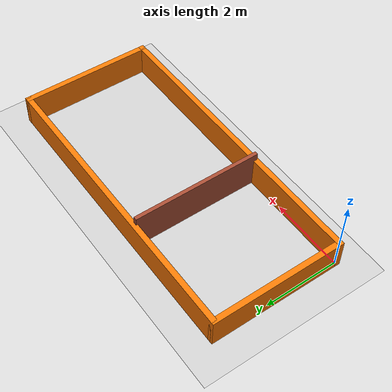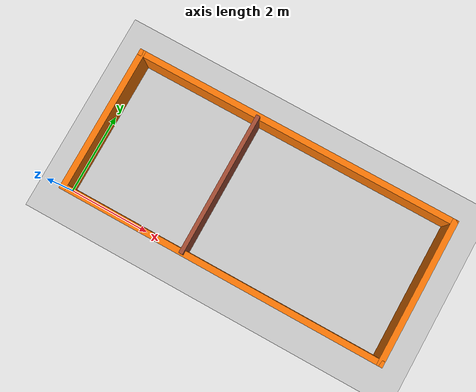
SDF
<sdf version="1.7">
 <world name="world_bt_1">
  <light name="sun" type="directional">
   <pose>0 0 10 0 -0 0</pose>
   <diffuse>0.8 0.8 0.8 1</diffuse>
   <specular>0.2 0.2 0.2 1</specular>
   <attenuation>
    <range>1000</range>
    <constant>0.9</constant>
    <linear>0.01</linear>
    <quadratic>0.001</quadratic>
   </attenuation>
   <direction>-0.5 0.1 -0.9</direction>
   <spot><inner_angle>0</inner_angle><outer_angle>0</outer_angle><falloff>0</falloff></spot>
  </light>
  <model name="ground_plane">
   <static>1</static>
   <link name="link">
    <collision name="collision">
     <geometry><plane><normal>0 0 1</normal><size>100 100</size></plane></geometry>
     <surface><friction><ode><mu>100</mu><mu2>50</mu2></ode></friction></surface>
    </collision>
    <visual name="visual">
     <cast_shadows>0</cast_shadows>
     <geometry><plane><normal>0 0 1</normal><size>100 100</size></plane></geometry>
     <material>
      <script><uri>file://media/materials/scripts/gazebo.material</uri><name>Gazebo/Grey</name></script>
     </material>
    </visual>
   </link>
  </model>
  <gravity>0 0 -9.8</gravity>
  <magnetic_field>6e-06 2.3e-05 -4.2e-05</magnetic_field>
  <atmosphere type="adiabatic"/>
  <physics type="ode">
   <max_step_size>0.001</max_step_size>
   <real_time_factor>1</real_time_factor>
   <real_time_update_rate>1000</real_time_update_rate>
  </physics>
  <scene><ambient>0.4 0.4 0.4 1</ambient><background>0.7 0.7 0.7 1</background><shadows>1</shadows></scene>
  <audio><device>default</device></audio>
  <spherical_coordinates>
   <surface_model>EARTH_WGS84</surface_model>
   <latitude_deg>0</latitude_deg>
   <longitude_deg>0</longitude_deg>
   <elevation>0</elevation>
   <heading_deg>0</heading_deg>
  </spherical_coordinates>
  <model name="walls">
   <pose>4 1.75 0 0 -0 0</pose>
   <link name="Wall_23">
    <collision name="Wall_23_Collision">
     <geometry><box><size>3.65 0.15 0.8</size></box></geometry>
     <pose>0 0 0.4 0 -0 0</pose>
    </collision>
    <visual name="Wall_23_Visual">
     <pose>0 0 0.4 0 -0 0</pose>
     <geometry><box><size>3.65 0.15 0.8</size></box></geometry>
     <material>
      <script><uri>file://media/materials/scripts/gazebo.material</uri><name>Gazebo/Grey</name></script>
      <ambient>0.996078 0.47451 0.0196078 1</ambient>
     </material>
     <meta><layer>0</layer></meta>
    </visual>
    <pose>-4 0 0 0 -0 1.5708</pose>
   </link>
   <link name="Wall_24">
    <collision name="Wall_24_Collision">
     <geometry><box><size>8.15 0.15 0.8</size></box></geometry>
     <pose>0 0 0.4 0 -0 0</pose>
    </collision>
    <visual name="Wall_24_Visual">
     <pose>0 0 0.4 0 -0 0</pose>
     <geometry><box><size>8.15 0.15 0.8</size></box></geometry>
     <material>
      <script><uri>file://media/materials/scripts/gazebo.material</uri><name>Gazebo/Grey</name></script>
      <ambient>0.996078 0.47451 0.0196078 1</ambient>
     </material>
     <meta><layer>0</layer></meta>
    </visual>
    <pose>0 1.75 0 0 -0 0</pose>
   </link>
   <link name="Wall_25">
    <collision name="Wall_25_Collision">
     <geometry><box><size>3.65 0.15 0.8</size></box></geometry>
     <pose>0 0 0.4 0 -0 0</pose>
    </collision>
    <visual name="Wall_25_Visual">
     <pose>0 0 0.4 0 -0 0</pose>
     <geometry><box><size>3.65 0.15 0.8</size></box></geometry>
     <material>
      <script><uri>file://media/materials/scripts/gazebo.material</uri><name>Gazebo/Grey</name></script>
      <ambient>0.996078 0.47451 0.0196078 1</ambient>
     </material>
     <meta><layer>0</layer></meta>
    </visual>
    <pose>4 0 0 0 -0 -1.5708</pose>
   </link>
   <link name="Wall_26">
    <collision name="Wall_26_Collision">
     <geometry><box><size>8.15 0.15 0.8</size></box></geometry>
     <pose>0 0 0.4 0 -0 0</pose>
    </collision>
    <visual name="Wall_26_Visual">
     <pose>0 0 0.4 0 -0 0</pose>
     <geometry><box><size>8.15 0.15 0.8</size></box></geometry>
     <material>
      <script><uri>file://media/materials/scripts/gazebo.material</uri><name>Gazebo/Grey</name></script>
      <ambient>0.996078 0.47451 0.0196078 1</ambient>
     </material>
     <meta><layer>0</layer></meta>
    </visual>
    <pose>0 -1.75 0 0 -0 3.14159</pose>
   </link>
   <static>1</static>
  </model>
  <model name="wall">
   <static>true</static>
   <link name="link_0">
    <inertial>
     <mass>100</mass>
     <inertia>
      <ixx>0.166667</ixx>
      <ixy>0</ixy>
      <ixz>0</ixz>
      <iyy>0.166667</iyy>
      <iyz>0</iyz>
      <izz>0.166667</izz>
     </inertia>
    </inertial>
    <pose>-0.568582 -0.224997 0.5 0 -0 0</pose>
    <visual name="visual">
     <geometry><box><size>0.1 3.5 1</size></box></geometry>
     <material>
      <lighting>1</lighting>
      <script><uri>file://media/materials/scripts/gazebo.material</uri><name>Gazebo/Bricks</name></script>
      <shader type="pixel"><normal_map>__default__</normal_map></shader>
      <ambient>1 1 1 1</ambient>
      <diffuse>0.7 0.7 0.7 1</diffuse>
      <specular>0.01 0.01 0.01 1</specular>
      <emissive>0 0 0 1</emissive>
     </material>
    </visual>
    <collision name="collision">
     <geometry><box><size>0.35 12.25 1</size></box></geometry>
     <surface>
      <friction>
       <ode><mu>1</mu><mu2>1</mu2><fdir1>0 0 0</fdir1><slip1>0</slip1><slip2>0</slip2></ode>
       <torsional>
        <coefficient>1</coefficient>
        <patch_radius>0</patch_radius>
        <surface_radius>0</surface_radius>
        <use_patch_radius>1</use_patch_radius>
        <ode><slip>0</slip></ode>
       </torsional>
      </friction>
      <bounce><restitution_coefficient>0</restitution_coefficient><threshold>1e+06</threshold></bounce>
      <contact>
       <collide_without_contact>0</collide_without_contact>
       <collide_without_contact_bitmask>1</collide_without_contact_bitmask>
       <collide_bitmask>1</collide_bitmask>
       <ode>
        <soft_cfm>0</soft_cfm>
        <soft_erp>0.2</soft_erp>
        <kp>1e+13</kp>
        <kd>1</kd>
        <max_vel>0.01</max_vel>
        <min_depth>0</min_depth>
       </ode>
       <bullet>
        <split_impulse>1</split_impulse>
        <split_impulse_penetration_threshold>-0.01</split_impulse_penetration_threshold>
        <soft_cfm>0</soft_cfm>
        <soft_erp>0.2</soft_erp>
        <kp>1e+13</kp>
        <kd>1</kd>
       </bullet>
      </contact>
     </surface>
    </collision>
   </link>
   <static>0</static>
   <pose>3.61536 1.94314 0 0 -0 0</pose>
  </model>
 </world>
</sdf>
